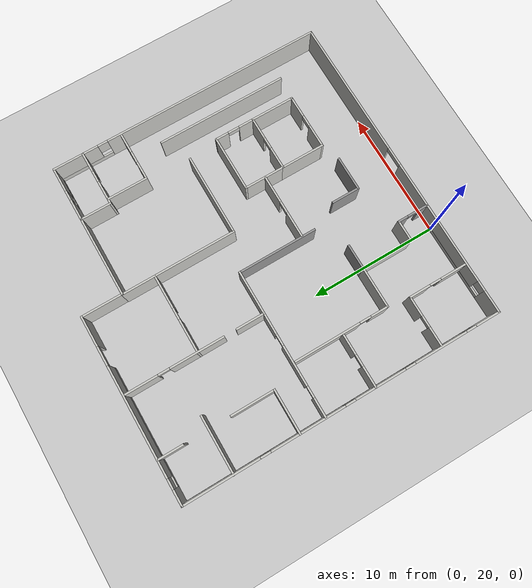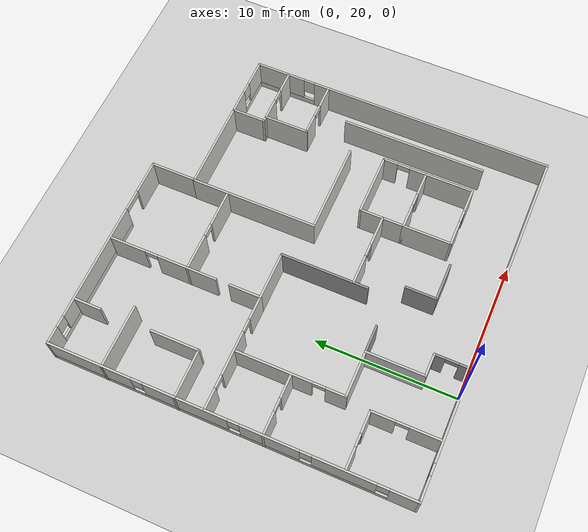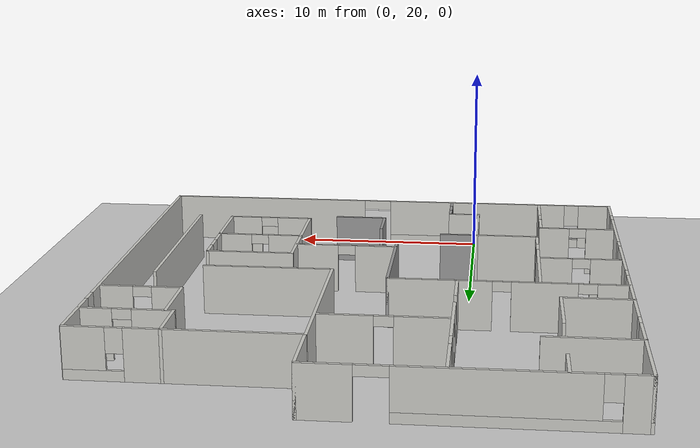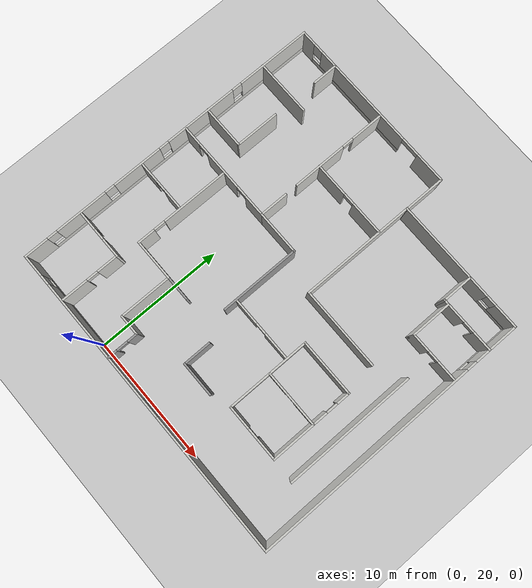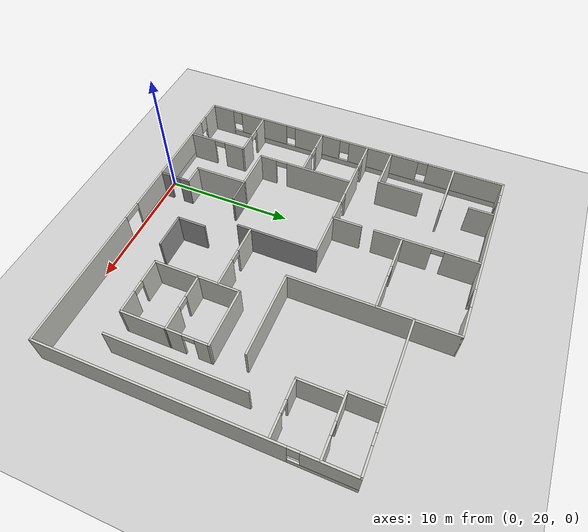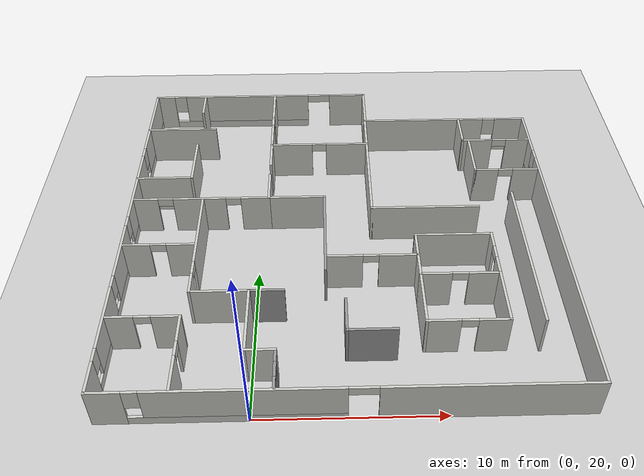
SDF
<sdf version="1.6">
 <world name="default">
  <model name="ground_plane">
   <static>1</static>
   <link name="link">
    <collision name="collision">
     <geometry><plane><normal>0 0 1</normal><size>100 100</size></plane></geometry>
     <surface><friction><ode><mu>100</mu><mu2>50</mu2></ode></friction></surface>
    </collision>
    <visual name="visual">
     <cast_shadows>0</cast_shadows>
     <geometry><plane><normal>0 0 1</normal><size>100 100</size></plane></geometry>
     <material>
      <script><uri>file://media/materials/scripts/gazebo.material</uri><name>Gazebo/Grey</name></script>
     </material>
    </visual>
   </link>
  </model>
  <model name="Multi_25_2">
   <pose>4.82095 32.5177 0 0 -0 0</pose>
   <link name="Wall_0">
    <pose>-5.31645 12.5 0 0 -0 0</pose>
    <visual name="Wall_0_Visual_0">
     <pose>-6.62499 0 1.25 0 -0 0</pose>
     <geometry><box><size>1.25203 0.15 2.5</size></box></geometry>
     <material>
      <script><uri>file://media/materials/scripts/gazebo.material</uri><name>Gazebo/CeilingTiled</name></script>
      <ambient>1 1 1 1</ambient>
     </material>
     <meta><layer>0</layer></meta>
    </visual>
    <collision name="Wall_0_Collision_0">
     <geometry><box><size>1.25203 0.15 2.5</size></box></geometry>
     <pose>-6.62499 0 1.25 0 -0 0</pose>
    </collision>
    <visual name="Wall_0_Visual_1">
     <pose>6.02715 0 1.25 0 -0 0</pose>
     <geometry><box><size>2.44769 0.15 2.5</size></box></geometry>
     <material>
      <script><uri>file://media/materials/scripts/gazebo.material</uri><name>Gazebo/CeilingTiled</name></script>
      <ambient>1 1 1 1</ambient>
     </material>
     <meta><layer>0</layer></meta>
    </visual>
    <collision name="Wall_0_Collision_1">
     <geometry><box><size>2.44769 0.15 2.5</size></box></geometry>
     <pose>6.02715 0 1.25 0 -0 0</pose>
    </collision>
    <visual name="Wall_0_Visual_2">
     <pose>-1.34783 0 0.25 0 -0 0</pose>
     <geometry><box><size>9.30228 0.15 0.5</size></box></geometry>
     <material>
      <script><uri>file://media/materials/scripts/gazebo.material</uri><name>Gazebo/CeilingTiled</name></script>
      <ambient>1 1 1 1</ambient>
     </material>
     <meta><layer>0</layer></meta>
    </visual>
    <collision name="Wall_0_Collision_2">
     <geometry><box><size>9.30228 0.15 0.5</size></box></geometry>
     <pose>-1.34783 0 0.25 0 -0 0</pose>
    </collision>
    <visual name="Wall_0_Visual_3">
     <pose>-0.947833 0 1.5 0 -0 0</pose>
     <geometry><box><size>8.50228 0.15 2</size></box></geometry>
     <material>
      <script><uri>file://media/materials/scripts/gazebo.material</uri><name>Gazebo/CeilingTiled</name></script>
      <ambient>1 1 1 1</ambient>
     </material>
     <meta><layer>0</layer></meta>
    </visual>
    <collision name="Wall_0_Collision_3">
     <geometry><box><size>8.50228 0.15 2</size></box></geometry>
     <pose>-0.947833 0 1.5 0 -0 0</pose>
    </collision>
    <visual name="Wall_0_Visual_4">
     <pose>-5.59897 0 1.9 0 -0 0</pose>
     <geometry><box><size>0.8 0.15 1.2</size></box></geometry>
     <material>
      <script><uri>file://media/materials/scripts/gazebo.material</uri><name>Gazebo/CeilingTiled</name></script>
      <ambient>1 1 1 1</ambient>
     </material>
     <meta><layer>0</layer></meta>
    </visual>
    <collision name="Wall_0_Collision_4">
     <geometry><box><size>0.8 0.15 1.2</size></box></geometry>
     <pose>-5.59897 0 1.9 0 -0 0</pose>
    </collision>
    <visual name="Wall_0_Visual_5">
     <pose>4.05331 0 2.25 0 -0 0</pose>
     <geometry><box><size>1.5 0.15 0.5</size></box></geometry>
     <material>
      <script><uri>file://media/materials/scripts/gazebo.material</uri><name>Gazebo/CeilingTiled</name></script>
      <ambient>1 1 1 1</ambient>
     </material>
     <meta><layer>0</layer></meta>
    </visual>
    <collision name="Wall_0_Collision_5">
     <geometry><box><size>1.5 0.15 0.5</size></box></geometry>
     <pose>4.05331 0 2.25 0 -0 0</pose>
    </collision>
   </link>
   <link name="Wall_11">
    <collision name="Wall_11_Collision">
     <geometry><box><size>3.5 0.15 2.5</size></box></geometry>
     <pose>0 0 1.25 0 -0 0</pose>
    </collision>
    <visual name="Wall_11_Visual">
     <pose>0 0 1.25 0 -0 0</pose>
     <geometry><box><size>3.5 0.15 2.5</size></box></geometry>
     <material>
      <script><uri>file://media/materials/scripts/gazebo.material</uri><name>Gazebo/CeilingTiled</name></script>
      <ambient>1 1 1 1</ambient>
     </material>
     <meta><layer>0</layer></meta>
    </visual>
    <pose>-10.8326 3.5524 0 0 -0 0</pose>
   </link>
   <link name="Wall_12">
    <collision name="Wall_12_Collision">
     <geometry><box><size>3.5 0.15 2.5</size></box></geometry>
     <pose>0 0 1.25 0 -0 0</pose>
    </collision>
    <visual name="Wall_12_Visual">
     <pose>0 0 1.25 0 -0 0</pose>
     <geometry><box><size>3.5 0.15 2.5</size></box></geometry>
     <material>
      <script><uri>file://media/materials/scripts/gazebo.material</uri><name>Gazebo/CeilingTiled</name></script>
      <ambient>1 1 1 1</ambient>
     </material>
     <meta><layer>0</layer></meta>
    </visual>
    <pose>-9.15756 5.22739 0 0 -0 1.5708</pose>
   </link>
   <link name="Wall_14">
    <pose>-4.31815 6.95576 0 0 -0 -1.5708</pose>
    <visual name="Wall_14_Visual_0">
     <pose>-4.1999 0 1.25 0 -0 0</pose>
     <geometry><box><size>2.6002 0.15 2.5</size></box></geometry>
     <material>
      <script><uri>file://media/materials/scripts/gazebo.material</uri><name>Gazebo/CeilingTiled</name></script>
      <ambient>1 1 1 1</ambient>
     </material>
     <meta><layer>0</layer></meta>
    </visual>
    <collision name="Wall_14_Collision_0">
     <geometry><box><size>2.6002 0.15 2.5</size></box></geometry>
     <pose>-4.1999 0 1.25 0 -0 0</pose>
    </collision>
    <visual name="Wall_14_Visual_1">
     <pose>0.145072 0 1.25 0 -0 0</pose>
     <geometry><box><size>4.28974 0.15 2.5</size></box></geometry>
     <material>
      <script><uri>file://media/materials/scripts/gazebo.material</uri><name>Gazebo/CeilingTiled</name></script>
      <ambient>1 1 1 1</ambient>
     </material>
     <meta><layer>0</layer></meta>
    </visual>
    <collision name="Wall_14_Collision_1">
     <geometry><box><size>4.28974 0.15 2.5</size></box></geometry>
     <pose>0.145072 0 1.25 0 -0 0</pose>
    </collision>
    <visual name="Wall_14_Visual_2">
     <pose>4.34497 0 1.25 0 -0 0</pose>
     <geometry><box><size>2.31006 0.15 2.5</size></box></geometry>
     <material>
      <script><uri>file://media/materials/scripts/gazebo.material</uri><name>Gazebo/CeilingTiled</name></script>
      <ambient>1 1 1 1</ambient>
     </material>
     <meta><layer>0</layer></meta>
    </visual>
    <collision name="Wall_14_Collision_2">
     <geometry><box><size>2.31006 0.15 2.5</size></box></geometry>
     <pose>4.34497 0 1.25 0 -0 0</pose>
    </collision>
    <visual name="Wall_14_Visual_3">
     <pose>-2.4498 0 2.25 0 -0 0</pose>
     <geometry><box><size>0.9 0.15 0.5</size></box></geometry>
     <material>
      <script><uri>file://media/materials/scripts/gazebo.material</uri><name>Gazebo/CeilingTiled</name></script>
      <ambient>1 1 1 1</ambient>
     </material>
     <meta><layer>0</layer></meta>
    </visual>
    <collision name="Wall_14_Collision_3">
     <geometry><box><size>0.9 0.15 0.5</size></box></geometry>
     <pose>-2.4498 0 2.25 0 -0 0</pose>
    </collision>
    <visual name="Wall_14_Visual_4">
     <pose>2.28994 0 2.25 0 -0 0</pose>
     <geometry><box><size>0 0.15 0.5</size></box></geometry>
     <material>
      <script><uri>file://media/materials/scripts/gazebo.material</uri><name>Gazebo/CeilingTiled</name></script>
      <ambient>1 1 1 1</ambient>
     </material>
     <meta><layer>0</layer></meta>
    </visual>
    <collision name="Wall_14_Collision_4">
     <geometry><box><size>0 0.15 0.5</size></box></geometry>
     <pose>2.28994 0 2.25 0 -0 0</pose>
    </collision>
   </link>
   <link name="Wall_15">
    <pose>-8.36815 1.53076 0 0 -0 3.14159</pose>
    <visual name="Wall_15_Visual_0">
     <pose>-3.2483 0 1.25 0 -0 0</pose>
     <geometry><box><size>1.75341 0.15 2.5</size></box></geometry>
     <material>
      <script><uri>file://media/materials/scripts/gazebo.material</uri><name>Gazebo/CeilingTiled</name></script>
      <ambient>1 1 1 1</ambient>
     </material>
     <meta><layer>0</layer></meta>
    </visual>
    <collision name="Wall_15_Collision_0">
     <geometry><box><size>1.75341 0.15 2.5</size></box></geometry>
     <pose>-3.2483 0 1.25 0 -0 0</pose>
    </collision>
    <visual name="Wall_15_Visual_1">
     <pose>0.1115 0 1.25 0 -0 0</pose>
     <geometry><box><size>3.16619 0.15 2.5</size></box></geometry>
     <material>
      <script><uri>file://media/materials/scripts/gazebo.material</uri><name>Gazebo/CeilingTiled</name></script>
      <ambient>1 1 1 1</ambient>
     </material>
     <meta><layer>0</layer></meta>
    </visual>
    <collision name="Wall_15_Collision_1">
     <geometry><box><size>3.16619 0.15 2.5</size></box></geometry>
     <pose>0.1115 0 1.25 0 -0 0</pose>
    </collision>
    <visual name="Wall_15_Visual_2">
     <pose>3.3598 0 1.25 0 -0 0</pose>
     <geometry><box><size>1.53041 0.15 2.5</size></box></geometry>
     <material>
      <script><uri>file://media/materials/scripts/gazebo.material</uri><name>Gazebo/CeilingTiled</name></script>
      <ambient>1 1 1 1</ambient>
     </material>
     <meta><layer>0</layer></meta>
    </visual>
    <collision name="Wall_15_Collision_2">
     <geometry><box><size>1.53041 0.15 2.5</size></box></geometry>
     <pose>3.3598 0 1.25 0 -0 0</pose>
    </collision>
    <visual name="Wall_15_Visual_3">
     <pose>-1.92159 0 2.25 0 -0 0</pose>
     <geometry><box><size>0.9 0.15 0.5</size></box></geometry>
     <material>
      <script><uri>file://media/materials/scripts/gazebo.material</uri><name>Gazebo/CeilingTiled</name></script>
      <ambient>1 1 1 1</ambient>
     </material>
     <meta><layer>0</layer></meta>
    </visual>
    <collision name="Wall_15_Collision_3">
     <geometry><box><size>0.9 0.15 0.5</size></box></geometry>
     <pose>-1.92159 0 2.25 0 -0 0</pose>
    </collision>
    <visual name="Wall_15_Visual_4">
     <pose>2.14459 0 2.25 0 -0 0</pose>
     <geometry><box><size>0.9 0.15 0.5</size></box></geometry>
     <material>
      <script><uri>file://media/materials/scripts/gazebo.material</uri><name>Gazebo/CeilingTiled</name></script>
      <ambient>1 1 1 1</ambient>
     </material>
     <meta><layer>0</layer></meta>
    </visual>
    <collision name="Wall_15_Collision_4">
     <geometry><box><size>0.9 0.15 0.5</size></box></geometry>
     <pose>2.14459 0 2.25 0 -0 0</pose>
    </collision>
   </link>
   <link name="Wall_17">
    <pose>10.3118 9.3381 0 0 -0 4.7e-05</pose>
    <visual name="Wall_17_Visual_0">
     <pose>-1.37711 0 1.25 0 -0 0</pose>
     <geometry><box><size>1.74579 0.15 2.5</size></box></geometry>
     <material>
      <script><uri>file://media/materials/scripts/gazebo.material</uri><name>Gazebo/CeilingTiled</name></script>
      <ambient>1 1 1 1</ambient>
     </material>
     <meta><layer>0</layer></meta>
    </visual>
    <collision name="Wall_17_Collision_0">
     <geometry><box><size>1.74579 0.15 2.5</size></box></geometry>
     <pose>-1.37711 0 1.25 0 -0 0</pose>
    </collision>
    <visual name="Wall_17_Visual_1">
     <pose>0.872893 0 0.25 0 -0 0</pose>
     <geometry><box><size>2.75421 0.15 0.5</size></box></geometry>
     <material>
      <script><uri>file://media/materials/scripts/gazebo.material</uri><name>Gazebo/CeilingTiled</name></script>
      <ambient>1 1 1 1</ambient>
     </material>
     <meta><layer>0</layer></meta>
    </visual>
    <collision name="Wall_17_Collision_1">
     <geometry><box><size>2.75421 0.15 0.5</size></box></geometry>
     <pose>0.872893 0 0.25 0 -0 0</pose>
    </collision>
    <visual name="Wall_17_Visual_2">
     <pose>1.27289 0 1.5 0 -0 0</pose>
     <geometry><box><size>1.95421 0.15 2</size></box></geometry>
     <material>
      <script><uri>file://media/materials/scripts/gazebo.material</uri><name>Gazebo/CeilingTiled</name></script>
      <ambient>1 1 1 1</ambient>
     </material>
     <meta><layer>0</layer></meta>
    </visual>
    <collision name="Wall_17_Collision_2">
     <geometry><box><size>1.95421 0.15 2</size></box></geometry>
     <pose>1.27289 0 1.5 0 -0 0</pose>
    </collision>
    <visual name="Wall_17_Visual_3">
     <pose>-0.104214 0 1.9 0 -0 0</pose>
     <geometry><box><size>0.8 0.15 1.2</size></box></geometry>
     <material>
      <script><uri>file://media/materials/scripts/gazebo.material</uri><name>Gazebo/CeilingTiled</name></script>
      <ambient>1 1 1 1</ambient>
     </material>
     <meta><layer>0</layer></meta>
    </visual>
    <collision name="Wall_17_Collision_3">
     <geometry><box><size>0.8 0.15 1.2</size></box></geometry>
     <pose>-0.104214 0 1.9 0 -0 0</pose>
    </collision>
   </link>
   <link name="Wall_19">
    <collision name="Wall_19_Collision">
     <geometry><box><size>2.5 0.15 2.5</size></box></geometry>
     <pose>0 0 1.25 0 -0 0</pose>
    </collision>
    <visual name="Wall_19_Visual">
     <pose>0 0 1.25 0 -0 0</pose>
     <geometry><box><size>2.5 0.15 2.5</size></box></geometry>
     <material>
      <script><uri>file://media/materials/scripts/gazebo.material</uri><name>Gazebo/CeilingTiled</name></script>
      <ambient>1 1 1 1</ambient>
     </material>
     <meta><layer>0</layer></meta>
    </visual>
    <pose>8.13679 8.1631 0 0 -0 -1.57059</pose>
   </link>
   <link name="Wall_2">
    <pose>-12.4924 0 0 0 -0 1.5708</pose>
    <visual name="Wall_2_Visual_0">
     <pose>-11.5919 0 1.25 0 -0 0</pose>
     <geometry><box><size>1.96611 0.15 2.5</size></box></geometry>
     <material>
      <script><uri>file://media/materials/scripts/gazebo.material</uri><name>Gazebo/CeilingTiled</name></script>
      <ambient>1 1 1 1</ambient>
     </material>
     <meta><layer>0</layer></meta>
    </visual>
    <collision name="Wall_2_Collision_0">
     <geometry><box><size>1.96611 0.15 2.5</size></box></geometry>
     <pose>-11.5919 0 1.25 0 -0 0</pose>
    </collision>
    <visual name="Wall_2_Visual_1">
     <pose>0.983056 0 0.25 0 -0 0</pose>
     <geometry><box><size>23.1839 0.15 0.5</size></box></geometry>
     <material>
      <script><uri>file://media/materials/scripts/gazebo.material</uri><name>Gazebo/CeilingTiled</name></script>
      <ambient>1 1 1 1</ambient>
     </material>
     <meta><layer>0</layer></meta>
    </visual>
    <collision name="Wall_2_Collision_1">
     <geometry><box><size>23.1839 0.15 0.5</size></box></geometry>
     <pose>0.983056 0 0.25 0 -0 0</pose>
    </collision>
    <visual name="Wall_2_Visual_2">
     <pose>-7.71253 0 1.5 0 -0 0</pose>
     <geometry><box><size>4.19271 0.15 2</size></box></geometry>
     <material>
      <script><uri>file://media/materials/scripts/gazebo.material</uri><name>Gazebo/CeilingTiled</name></script>
      <ambient>1 1 1 1</ambient>
     </material>
     <meta><layer>0</layer></meta>
    </visual>
    <collision name="Wall_2_Collision_2">
     <geometry><box><size>4.19271 0.15 2</size></box></geometry>
     <pose>-7.71253 0 1.5 0 -0 0</pose>
    </collision>
    <visual name="Wall_2_Visual_3">
     <pose>-2.81454 0 1.5 0 -0 0</pose>
     <geometry><box><size>4.00328 0.15 2</size></box></geometry>
     <material>
      <script><uri>file://media/materials/scripts/gazebo.material</uri><name>Gazebo/CeilingTiled</name></script>
      <ambient>1 1 1 1</ambient>
     </material>
     <meta><layer>0</layer></meta>
    </visual>
    <collision name="Wall_2_Collision_3">
     <geometry><box><size>4.00328 0.15 2</size></box></geometry>
     <pose>-2.81454 0 1.5 0 -0 0</pose>
    </collision>
    <visual name="Wall_2_Visual_4">
     <pose>2.89141 0 1.5 0 -0 0</pose>
     <geometry><box><size>5.80863 0.15 2</size></box></geometry>
     <material>
      <script><uri>file://media/materials/scripts/gazebo.material</uri><name>Gazebo/CeilingTiled</name></script>
      <ambient>1 1 1 1</ambient>
     </material>
     <meta><layer>0</layer></meta>
    </visual>
    <collision name="Wall_2_Collision_4">
     <geometry><box><size>5.80863 0.15 2</size></box></geometry>
     <pose>2.89141 0 1.5 0 -0 0</pose>
    </collision>
    <visual name="Wall_2_Visual_5">
     <pose>9.58536 0 1.5 0 -0 0</pose>
     <geometry><box><size>5.97928 0.15 2</size></box></geometry>
     <material>
      <script><uri>file://media/materials/scripts/gazebo.material</uri><name>Gazebo/CeilingTiled</name></script>
      <ambient>1 1 1 1</ambient>
     </material>
     <meta><layer>0</layer></meta>
    </visual>
    <collision name="Wall_2_Collision_5">
     <geometry><box><size>5.97928 0.15 2</size></box></geometry>
     <pose>9.58536 0 1.5 0 -0 0</pose>
    </collision>
    <visual name="Wall_2_Visual_6">
     <pose>-10.2089 0 1.9 0 -0 0</pose>
     <geometry><box><size>0.8 0.15 1.2</size></box></geometry>
     <material>
      <script><uri>file://media/materials/scripts/gazebo.material</uri><name>Gazebo/CeilingTiled</name></script>
      <ambient>1 1 1 1</ambient>
     </material>
     <meta><layer>0</layer></meta>
    </visual>
    <collision name="Wall_2_Collision_6">
     <geometry><box><size>0.8 0.15 1.2</size></box></geometry>
     <pose>-10.2089 0 1.9 0 -0 0</pose>
    </collision>
    <visual name="Wall_2_Visual_7">
     <pose>-5.21618 0 1.9 0 -0 0</pose>
     <geometry><box><size>0.8 0.15 1.2</size></box></geometry>
     <material>
      <script><uri>file://media/materials/scripts/gazebo.material</uri><name>Gazebo/CeilingTiled</name></script>
      <ambient>1 1 1 1</ambient>
     </material>
     <meta><layer>0</layer></meta>
    </visual>
    <collision name="Wall_2_Collision_7">
     <geometry><box><size>0.8 0.15 1.2</size></box></geometry>
     <pose>-5.21618 0 1.9 0 -0 0</pose>
    </collision>
    <visual name="Wall_2_Visual_8">
     <pose>-0.412904 0 1.9 0 -0 0</pose>
     <geometry><box><size>0.8 0.15 1.2</size></box></geometry>
     <material>
      <script><uri>file://media/materials/scripts/gazebo.material</uri><name>Gazebo/CeilingTiled</name></script>
      <ambient>1 1 1 1</ambient>
     </material>
     <meta><layer>0</layer></meta>
    </visual>
    <collision name="Wall_2_Collision_8">
     <geometry><box><size>0.8 0.15 1.2</size></box></geometry>
     <pose>-0.412904 0 1.9 0 -0 0</pose>
    </collision>
    <visual name="Wall_2_Visual_9">
     <pose>6.19572 0 1.9 0 -0 0</pose>
     <geometry><box><size>0.8 0.15 1.2</size></box></geometry>
     <material>
      <script><uri>file://media/materials/scripts/gazebo.material</uri><name>Gazebo/CeilingTiled</name></script>
      <ambient>1 1 1 1</ambient>
     </material>
     <meta><layer>0</layer></meta>
    </visual>
    <collision name="Wall_2_Collision_9">
     <geometry><box><size>0.8 0.15 1.2</size></box></geometry>
     <pose>6.19572 0 1.9 0 -0 0</pose>
    </collision>
   </link>
   <link name="Wall_20">
    <pose>10.312 6.98821 0 0 -0 0</pose>
    <visual name="Wall_20_Visual_0">
     <pose>-1.24915 0 1.25 0 -0 0</pose>
     <geometry><box><size>2.0017 0.15 2.5</size></box></geometry>
     <material>
      <script><uri>file://media/materials/scripts/gazebo.material</uri><name>Gazebo/CeilingTiled</name></script>
      <ambient>1 1 1 1</ambient>
     </material>
     <meta><layer>0</layer></meta>
    </visual>
    <collision name="Wall_20_Collision_0">
     <geometry><box><size>2.0017 0.15 2.5</size></box></geometry>
     <pose>-1.24915 0 1.25 0 -0 0</pose>
    </collision>
    <visual name="Wall_20_Visual_1">
     <pose>1.45085 0 1.25 0 -0 0</pose>
     <geometry><box><size>1.5983 0.15 2.5</size></box></geometry>
     <material>
      <script><uri>file://media/materials/scripts/gazebo.material</uri><name>Gazebo/CeilingTiled</name></script>
      <ambient>1 1 1 1</ambient>
     </material>
     <meta><layer>0</layer></meta>
    </visual>
    <collision name="Wall_20_Collision_1">
     <geometry><box><size>1.5983 0.15 2.5</size></box></geometry>
     <pose>1.45085 0 1.25 0 -0 0</pose>
    </collision>
    <visual name="Wall_20_Visual_2">
     <pose>0.201704 0 2.25 0 -0 0</pose>
     <geometry><box><size>0.9 0.15 0.5</size></box></geometry>
     <material>
      <script><uri>file://media/materials/scripts/gazebo.material</uri><name>Gazebo/CeilingTiled</name></script>
      <ambient>1 1 1 1</ambient>
     </material>
     <meta><layer>0</layer></meta>
    </visual>
    <collision name="Wall_20_Collision_2">
     <geometry><box><size>0.9 0.15 0.5</size></box></geometry>
     <pose>0.201704 0 2.25 0 -0 0</pose>
    </collision>
   </link>
   <link name="Wall_22">
    <collision name="Wall_22_Collision">
     <geometry><box><size>3.25 0.15 2.5</size></box></geometry>
     <pose>0 0 1.25 0 -0 0</pose>
    </collision>
    <visual name="Wall_22_Visual">
     <pose>0 0 1.25 0 -0 0</pose>
     <geometry><box><size>3.25 0.15 2.5</size></box></geometry>
     <material>
      <script><uri>file://media/materials/scripts/gazebo.material</uri><name>Gazebo/CeilingTiled</name></script>
      <ambient>1 1 1 1</ambient>
     </material>
     <meta><layer>0</layer></meta>
    </visual>
    <pose>8.51117 5.42212 0 0 -0 -1.5708</pose>
   </link>
   <link name="Wall_23">
    <pose>10.4362 3.87212 0 0 -0 0</pose>
    <visual name="Wall_23_Visual_0">
     <pose>-1.23972 0 1.25 0 -0 0</pose>
     <geometry><box><size>1.52056 0.15 2.5</size></box></geometry>
     <material>
      <script><uri>file://media/materials/scripts/gazebo.material</uri><name>Gazebo/CeilingTiled</name></script>
      <ambient>1 1 1 1</ambient>
     </material>
     <meta><layer>0</layer></meta>
    </visual>
    <collision name="Wall_23_Collision_0">
     <geometry><box><size>1.52056 0.15 2.5</size></box></geometry>
     <pose>-1.23972 0 1.25 0 -0 0</pose>
    </collision>
    <visual name="Wall_23_Visual_1">
     <pose>1.21028 0 1.25 0 -0 0</pose>
     <geometry><box><size>1.57944 0.15 2.5</size></box></geometry>
     <material>
      <script><uri>file://media/materials/scripts/gazebo.material</uri><name>Gazebo/CeilingTiled</name></script>
      <ambient>1 1 1 1</ambient>
     </material>
     <meta><layer>0</layer></meta>
    </visual>
    <collision name="Wall_23_Collision_1">
     <geometry><box><size>1.57944 0.15 2.5</size></box></geometry>
     <pose>1.21028 0 1.25 0 -0 0</pose>
    </collision>
    <visual name="Wall_23_Visual_2">
     <pose>-0.02944 0 2.25 0 -0 0</pose>
     <geometry><box><size>0.9 0.15 0.5</size></box></geometry>
     <material>
      <script><uri>file://media/materials/scripts/gazebo.material</uri><name>Gazebo/CeilingTiled</name></script>
      <ambient>1 1 1 1</ambient>
     </material>
     <meta><layer>0</layer></meta>
    </visual>
    <collision name="Wall_23_Collision_2">
     <geometry><box><size>0.9 0.15 0.5</size></box></geometry>
     <pose>-0.02944 0 2.25 0 -0 0</pose>
    </collision>
   </link>
   <link name="Wall_25">
    <collision name="Wall_25_Collision">
     <geometry><box><size>9.062 0.15 2.5</size></box></geometry>
     <pose>0 0 1.25 0 -0 0</pose>
    </collision>
    <visual name="Wall_25_Visual">
     <pose>0 0 1.25 0 -0 0</pose>
     <geometry><box><size>9.062 0.15 2.5</size></box></geometry>
     <material>
      <script><uri>file://media/materials/scripts/gazebo.material</uri><name>Gazebo/CeilingTiled</name></script>
      <ambient>1 1 1 1</ambient>
     </material>
     <meta><layer>0</layer></meta>
    </visual>
    <pose>1.83255 4.882 0 0 -0 -1.5708</pose>
   </link>
   <link name="Wall_26">
    <collision name="Wall_26_Collision">
     <geometry><box><size>6.5 0.15 2.5</size></box></geometry>
     <pose>0 0 1.25 0 -0 0</pose>
    </collision>
    <visual name="Wall_26_Visual">
     <pose>0 0 1.25 0 -0 0</pose>
     <geometry><box><size>6.5 0.15 2.5</size></box></geometry>
     <material>
      <script><uri>file://media/materials/scripts/gazebo.material</uri><name>Gazebo/CeilingTiled</name></script>
      <ambient>1 1 1 1</ambient>
     </material>
     <meta><layer>0</layer></meta>
    </visual>
    <pose>5.00767 0.425999 0 0 -0 0</pose>
   </link>
   <link name="Wall_28">
    <pose>-8.26445 -2.3535 0 0 -0 -1.5708</pose>
    <visual name="Wall_28_Visual_0">
     <pose>-1.1653 0 1.25 0 -0 0</pose>
     <geometry><box><size>5.25855 0.15 2.5</size></box></geometry>
     <material>
      <script><uri>file://media/materials/scripts/gazebo.material</uri><name>Gazebo/CeilingTiled</name></script>
      <ambient>1 1 1 1</ambient>
     </material>
     <meta><layer>0</layer></meta>
    </visual>
    <collision name="Wall_28_Collision_0">
     <geometry><box><size>5.25855 0.15 2.5</size></box></geometry>
     <pose>-1.1653 0 1.25 0 -0 0</pose>
    </collision>
    <visual name="Wall_28_Visual_1">
     <pose>3.07927 0 1.25 0 -0 0</pose>
     <geometry><box><size>1.43059 0.15 2.5</size></box></geometry>
     <material>
      <script><uri>file://media/materials/scripts/gazebo.material</uri><name>Gazebo/CeilingTiled</name></script>
      <ambient>1 1 1 1</ambient>
     </material>
     <meta><layer>0</layer></meta>
    </visual>
    <collision name="Wall_28_Collision_1">
     <geometry><box><size>1.43059 0.15 2.5</size></box></geometry>
     <pose>3.07927 0 1.25 0 -0 0</pose>
    </collision>
    <visual name="Wall_28_Visual_2">
     <pose>1.91398 0 2.25 0 -0 0</pose>
     <geometry><box><size>0.9 0.15 0.5</size></box></geometry>
     <material>
      <script><uri>file://media/materials/scripts/gazebo.material</uri><name>Gazebo/CeilingTiled</name></script>
      <ambient>1 1 1 1</ambient>
     </material>
     <meta><layer>0</layer></meta>
    </visual>
    <collision name="Wall_28_Collision_2">
     <geometry><box><size>0.9 0.15 0.5</size></box></geometry>
     <pose>1.91398 0 2.25 0 -0 0</pose>
    </collision>
   </link>
   <link name="Wall_29">
    <collision name="Wall_29_Collision">
     <geometry><box><size>3.337 0.15 2.5</size></box></geometry>
     <pose>0 0 1.25 0 -0 0</pose>
    </collision>
    <visual name="Wall_29_Visual">
     <pose>0 0 1.25 0 -0 0</pose>
     <geometry><box><size>3.337 0.15 2.5</size></box></geometry>
     <material>
      <script><uri>file://media/materials/scripts/gazebo.material</uri><name>Gazebo/CeilingTiled</name></script>
      <ambient>1 1 1 1</ambient>
     </material>
     <meta><layer>0</layer></meta>
    </visual>
    <pose>-6.67095 -6.073 0 0 -0 0</pose>
   </link>
   <link name="Wall_30">
    <collision name="Wall_30_Collision">
     <geometry><box><size>4.16159 0.15 2.5</size></box></geometry>
     <pose>0 0 1.25 0 -0 0</pose>
    </collision>
    <visual name="Wall_30_Visual">
     <pose>0 0 1.25 0 -0 0</pose>
     <geometry><box><size>4.16159 0.15 2.5</size></box></geometry>
     <material>
      <script><uri>file://media/materials/scripts/gazebo.material</uri><name>Gazebo/CeilingTiled</name></script>
      <ambient>1 1 1 1</ambient>
     </material>
     <meta><layer>0</layer></meta>
    </visual>
    <pose>-5.07745 -8.0785 0 0 -0 -1.5708</pose>
   </link>
   <link name="Wall_31">
    <collision name="Wall_31_Collision">
     <geometry><box><size>1.70371 0.15 2.5</size></box></geometry>
     <pose>0 0 1.25 0 -0 0</pose>
    </collision>
    <visual name="Wall_31_Visual">
     <pose>0 0 1.25 0 -0 0</pose>
     <geometry><box><size>1.70371 0.15 2.5</size></box></geometry>
     <material>
      <script><uri>file://media/materials/scripts/gazebo.material</uri><name>Gazebo/CeilingTiled</name></script>
      <ambient>1 1 1 1</ambient>
     </material>
     <meta><layer>0</layer></meta>
    </visual>
    <pose>-4.30059 -10.0841 0 0 -0 -0.000181</pose>
   </link>
   <link name="Wall_32">
    <pose>-3.52373 -11.2593 0 0 -0 -1.5708</pose>
    <visual name="Wall_32_Visual_0">
     <pose>-0.829686 0 1.25 0 -0 0</pose>
     <geometry><box><size>0.840627 0.15 2.5</size></box></geometry>
     <material>
      <script><uri>file://media/materials/scripts/gazebo.material</uri><name>Gazebo/Grey</name></script>
      <ambient>1 1 1 1</ambient>
     </material>
     <meta><layer>0</layer></meta>
    </visual>
    <collision name="Wall_32_Collision_0">
     <geometry><box><size>0.840627 0.15 2.5</size></box></geometry>
     <pose>-0.829686 0 1.25 0 -0 0</pose>
    </collision>
    <visual name="Wall_32_Visual_1">
     <pose>0.870314 0 1.25 0 -0 0</pose>
     <geometry><box><size>0.759373 0.15 2.5</size></box></geometry>
     <material>
      <script><uri>file://media/materials/scripts/gazebo.material</uri><name>Gazebo/Grey</name></script>
      <ambient>1 1 1 1</ambient>
     </material>
     <meta><layer>0</layer></meta>
    </visual>
    <collision name="Wall_32_Collision_1">
     <geometry><box><size>0.759373 0.15 2.5</size></box></geometry>
     <pose>0.870314 0 1.25 0 -0 0</pose>
    </collision>
    <visual name="Wall_32_Visual_2">
     <pose>0.040627 0 2.25 0 -0 0</pose>
     <geometry><box><size>0.9 0.15 0.5</size></box></geometry>
     <material>
      <script><uri>file://media/materials/scripts/gazebo.material</uri><name>Gazebo/Grey</name></script>
      <ambient>1 1 1 1</ambient>
     </material>
     <meta><layer>0</layer></meta>
    </visual>
    <collision name="Wall_32_Collision_2">
     <geometry><box><size>0.9 0.15 0.5</size></box></geometry>
     <pose>0.040627 0 2.25 0 -0 0</pose>
    </collision>
   </link>
   <link name="Wall_34">
    <collision name="Wall_34_Collision">
     <geometry><box><size>3.5 0.15 2.5</size></box></geometry>
     <pose>0 0 1.25 0 -0 0</pose>
    </collision>
    <visual name="Wall_34_Visual">
     <pose>0 0 1.25 0 -0 0</pose>
     <geometry><box><size>3.5 0.15 2.5</size></box></geometry>
     <material>
      <script><uri>file://media/materials/scripts/gazebo.material</uri><name>Gazebo/CeilingTiled</name></script>
      <ambient>1 1 1 1</ambient>
     </material>
     <meta><layer>0</layer></meta>
    </visual>
    <pose>-2.64316 1.53076 0 0 -0 0</pose>
   </link>
   <link name="Wall_38">
    <collision name="Wall_38_Collision">
     <geometry><box><size>3.25 0.15 2.5</size></box></geometry>
     <pose>0 0 1.25 0 -0 0</pose>
    </collision>
    <visual name="Wall_38_Visual">
     <pose>0 0 1.25 0 -0 0</pose>
     <geometry><box><size>3.25 0.15 2.5</size></box></geometry>
     <material>
      <script><uri>file://media/materials/scripts/gazebo.material</uri><name>Gazebo/CeilingTiled</name></script>
      <ambient>1 1 1 1</ambient>
     </material>
     <meta><layer>0</layer></meta>
    </visual>
    <pose>4.20689 -3.51892 0 0 -0 -1.5708</pose>
   </link>
   <link name="Wall_39">
    <pose>6.38189 -5.06892 0 0 -0 0</pose>
    <visual name="Wall_39_Visual_0">
     <pose>-1.34392 0 1.25 0 -0 0</pose>
     <geometry><box><size>1.81215 0.15 2.5</size></box></geometry>
     <material>
      <script><uri>file://media/materials/scripts/gazebo.material</uri><name>Gazebo/CeilingTiled</name></script>
      <ambient>1 1 1 1</ambient>
     </material>
     <meta><layer>0</layer></meta>
    </visual>
    <collision name="Wall_39_Collision_0">
     <geometry><box><size>1.81215 0.15 2.5</size></box></geometry>
     <pose>-1.34392 0 1.25 0 -0 0</pose>
    </collision>
    <visual name="Wall_39_Visual_1">
     <pose>1.35608 0 1.25 0 -0 0</pose>
     <geometry><box><size>1.78785 0.15 2.5</size></box></geometry>
     <material>
      <script><uri>file://media/materials/scripts/gazebo.material</uri><name>Gazebo/CeilingTiled</name></script>
      <ambient>1 1 1 1</ambient>
     </material>
     <meta><layer>0</layer></meta>
    </visual>
    <collision name="Wall_39_Collision_1">
     <geometry><box><size>1.78785 0.15 2.5</size></box></geometry>
     <pose>1.35608 0 1.25 0 -0 0</pose>
    </collision>
    <visual name="Wall_39_Visual_2">
     <pose>0.012152 0 2.25 0 -0 0</pose>
     <geometry><box><size>0.9 0.15 0.5</size></box></geometry>
     <material>
      <script><uri>file://media/materials/scripts/gazebo.material</uri><name>Gazebo/CeilingTiled</name></script>
      <ambient>1 1 1 1</ambient>
     </material>
     <meta><layer>0</layer></meta>
    </visual>
    <collision name="Wall_39_Collision_2">
     <geometry><box><size>0.9 0.15 0.5</size></box></geometry>
     <pose>0.012152 0 2.25 0 -0 0</pose>
    </collision>
   </link>
   <link name="Wall_4">
    <pose>0.007554 -12.5 0 0 -0 0</pose>
    <visual name="Wall_4_Visual_0">
     <pose>-11.6747 0 1.25 0 -0 0</pose>
     <geometry><box><size>1.80068 0.15 2.5</size></box></geometry>
     <material>
      <script><uri>file://media/materials/scripts/gazebo.material</uri><name>Gazebo/CeilingTiled</name></script>
      <ambient>1 1 1 1</ambient>
     </material>
     <meta><layer>0</layer></meta>
    </visual>
    <collision name="Wall_4_Collision_0">
     <geometry><box><size>1.80068 0.15 2.5</size></box></geometry>
     <pose>-11.6747 0 1.25 0 -0 0</pose>
    </collision>
    <visual name="Wall_4_Visual_1">
     <pose>7.05794 0 1.25 0 -0 0</pose>
     <geometry><box><size>11.0341 0.15 2.5</size></box></geometry>
     <material>
      <script><uri>file://media/materials/scripts/gazebo.material</uri><name>Gazebo/CeilingTiled</name></script>
      <ambient>1 1 1 1</ambient>
     </material>
     <meta><layer>0</layer></meta>
    </visual>
    <collision name="Wall_4_Collision_1">
     <geometry><box><size>11.0341 0.15 2.5</size></box></geometry>
     <pose>7.05794 0 1.25 0 -0 0</pose>
    </collision>
    <visual name="Wall_4_Visual_2">
     <pose>-5.36672 0 0.25 0 -0 0</pose>
     <geometry><box><size>10.8152 0.15 0.5</size></box></geometry>
     <material>
      <script><uri>file://media/materials/scripts/gazebo.material</uri><name>Gazebo/CeilingTiled</name></script>
      <ambient>1 1 1 1</ambient>
     </material>
     <meta><layer>0</layer></meta>
    </visual>
    <collision name="Wall_4_Collision_2">
     <geometry><box><size>10.8152 0.15 0.5</size></box></geometry>
     <pose>-5.36672 0 0.25 0 -0 0</pose>
    </collision>
    <visual name="Wall_4_Visual_3">
     <pose>-4.96672 0 1.5 0 -0 0</pose>
     <geometry><box><size>10.0152 0.15 2</size></box></geometry>
     <material>
      <script><uri>file://media/materials/scripts/gazebo.material</uri><name>Gazebo/CeilingTiled</name></script>
      <ambient>1 1 1 1</ambient>
     </material>
     <meta><layer>0</layer></meta>
    </visual>
    <collision name="Wall_4_Collision_3">
     <geometry><box><size>10.0152 0.15 2</size></box></geometry>
     <pose>-4.96672 0 1.5 0 -0 0</pose>
    </collision>
    <visual name="Wall_4_Visual_4">
     <pose>-10.3743 0 1.9 0 -0 0</pose>
     <geometry><box><size>0.8 0.15 1.2</size></box></geometry>
     <material>
      <script><uri>file://media/materials/scripts/gazebo.material</uri><name>Gazebo/CeilingTiled</name></script>
      <ambient>1 1 1 1</ambient>
     </material>
     <meta><layer>0</layer></meta>
    </visual>
    <collision name="Wall_4_Collision_4">
     <geometry><box><size>0.8 0.15 1.2</size></box></geometry>
     <pose>-10.3743 0 1.9 0 -0 0</pose>
    </collision>
    <visual name="Wall_4_Visual_5">
     <pose>0.790887 0 2.25 0 -0 0</pose>
     <geometry><box><size>1.5 0.15 0.5</size></box></geometry>
     <material>
      <script><uri>file://media/materials/scripts/gazebo.material</uri><name>Gazebo/CeilingTiled</name></script>
      <ambient>1 1 1 1</ambient>
     </material>
     <meta><layer>0</layer></meta>
    </visual>
    <collision name="Wall_4_Collision_5">
     <geometry><box><size>1.5 0.15 0.5</size></box></geometry>
     <pose>0.790887 0 2.25 0 -0 0</pose>
    </collision>
   </link>
   <link name="Wall_40">
    <pose>8.55689 -3.51892 0 0 -0 1.5708</pose>
    <visual name="Wall_40_Visual_0">
     <pose>-0.995561 0 1.25 0 -0 0</pose>
     <geometry><box><size>1.25888 0.15 2.5</size></box></geometry>
     <material>
      <script><uri>file://media/materials/scripts/gazebo.material</uri><name>Gazebo/CeilingTiled</name></script>
      <ambient>1 1 1 1</ambient>
     </material>
     <meta><layer>0</layer></meta>
    </visual>
    <collision name="Wall_40_Collision_0">
     <geometry><box><size>1.25888 0.15 2.5</size></box></geometry>
     <pose>-0.995561 0 1.25 0 -0 0</pose>
    </collision>
    <visual name="Wall_40_Visual_1">
     <pose>1.07944 0 1.25 0 -0 0</pose>
     <geometry><box><size>1.09112 0.15 2.5</size></box></geometry>
     <material>
      <script><uri>file://media/materials/scripts/gazebo.material</uri><name>Gazebo/CeilingTiled</name></script>
      <ambient>1 1 1 1</ambient>
     </material>
     <meta><layer>0</layer></meta>
    </visual>
    <collision name="Wall_40_Collision_1">
     <geometry><box><size>1.09112 0.15 2.5</size></box></geometry>
     <pose>1.07944 0 1.25 0 -0 0</pose>
    </collision>
    <visual name="Wall_40_Visual_2">
     <pose>0.083878 0 2.25 0 -0 0</pose>
     <geometry><box><size>0.9 0.15 0.5</size></box></geometry>
     <material>
      <script><uri>file://media/materials/scripts/gazebo.material</uri><name>Gazebo/CeilingTiled</name></script>
      <ambient>1 1 1 1</ambient>
     </material>
     <meta><layer>0</layer></meta>
    </visual>
    <collision name="Wall_40_Collision_2">
     <geometry><box><size>0.9 0.15 0.5</size></box></geometry>
     <pose>0.083878 0 2.25 0 -0 0</pose>
    </collision>
   </link>
   <link name="Wall_41">
    <collision name="Wall_41_Collision">
     <geometry><box><size>4.5 0.15 2.5</size></box></geometry>
     <pose>0 0 1.25 0 -0 0</pose>
    </collision>
    <visual name="Wall_41_Visual">
     <pose>0 0 1.25 0 -0 0</pose>
     <geometry><box><size>4.5 0.15 2.5</size></box></geometry>
     <material>
      <script><uri>file://media/materials/scripts/gazebo.material</uri><name>Gazebo/CeilingTiled</name></script>
      <ambient>1 1 1 1</ambient>
     </material>
     <meta><layer>0</layer></meta>
    </visual>
    <pose>6.38189 -1.96892 0 0 -0 3.14159</pose>
   </link>
   <link name="Wall_43">
    <collision name="Wall_43_Collision">
     <geometry><box><size>3.5 0.15 2.5</size></box></geometry>
     <pose>0 0 1.25 0 -0 0</pose>
    </collision>
    <visual name="Wall_43_Visual">
     <pose>0 0 1.25 0 -0 0</pose>
     <geometry><box><size>3.5 0.15 2.5</size></box></geometry>
     <material>
      <script><uri>file://media/materials/scripts/gazebo.material</uri><name>Gazebo/CeilingTiled</name></script>
      <ambient>1 1 1 1</ambient>
     </material>
     <meta><layer>0</layer></meta>
    </visual>
    <pose>8.55689 -6.74392 0 0 -0 -1.5708</pose>
   </link>
   <link name="Wall_44">
    <pose>6.38189 -8.41892 0 0 -0 3.14159</pose>
    <visual name="Wall_44_Visual_0">
     <pose>-1.38283 0 1.25 0 -0 0</pose>
     <geometry><box><size>1.73435 0.15 2.5</size></box></geometry>
     <material>
      <script><uri>file://media/materials/scripts/gazebo.material</uri><name>Gazebo/CeilingTiled</name></script>
      <ambient>1 1 1 1</ambient>
     </material>
     <meta><layer>0</layer></meta>
    </visual>
    <collision name="Wall_44_Collision_0">
     <geometry><box><size>1.73435 0.15 2.5</size></box></geometry>
     <pose>-1.38283 0 1.25 0 -0 0</pose>
    </collision>
    <visual name="Wall_44_Visual_1">
     <pose>1.31717 0 1.25 0 -0 0</pose>
     <geometry><box><size>1.86565 0.15 2.5</size></box></geometry>
     <material>
      <script><uri>file://media/materials/scripts/gazebo.material</uri><name>Gazebo/CeilingTiled</name></script>
      <ambient>1 1 1 1</ambient>
     </material>
     <meta><layer>0</layer></meta>
    </visual>
    <collision name="Wall_44_Collision_1">
     <geometry><box><size>1.86565 0.15 2.5</size></box></geometry>
     <pose>1.31717 0 1.25 0 -0 0</pose>
    </collision>
    <visual name="Wall_44_Visual_2">
     <pose>-0.065654 0 2.25 0 -0 0</pose>
     <geometry><box><size>0.9 0.15 0.5</size></box></geometry>
     <material>
      <script><uri>file://media/materials/scripts/gazebo.material</uri><name>Gazebo/CeilingTiled</name></script>
      <ambient>1 1 1 1</ambient>
     </material>
     <meta><layer>0</layer></meta>
    </visual>
    <collision name="Wall_44_Collision_2">
     <geometry><box><size>0.9 0.15 0.5</size></box></geometry>
     <pose>-0.065654 0 2.25 0 -0 0</pose>
    </collision>
   </link>
   <link name="Wall_45">
    <collision name="Wall_45_Collision">
     <geometry><box><size>3.5 0.15 2.5</size></box></geometry>
     <pose>0 0 1.25 0 -0 0</pose>
    </collision>
    <visual name="Wall_45_Visual">
     <pose>0 0 1.25 0 -0 0</pose>
     <geometry><box><size>3.5 0.15 2.5</size></box></geometry>
     <material>
      <script><uri>file://media/materials/scripts/gazebo.material</uri><name>Gazebo/CeilingTiled</name></script>
      <ambient>1 1 1 1</ambient>
     </material>
     <meta><layer>0</layer></meta>
    </visual>
    <pose>4.20689 -6.74392 0 0 -0 1.5708</pose>
   </link>
   <link name="Wall_47">
    <pose>-1.27389 6.7806 0 0 -0 0</pose>
    <visual name="Wall_47_Visual_0">
     <pose>-1.77896 0 1.25 0 -0 0</pose>
     <geometry><box><size>2.69207 0.15 2.5</size></box></geometry>
     <material>
      <script><uri>file://media/materials/scripts/gazebo.material</uri><name>Gazebo/CeilingTiled</name></script>
      <ambient>1 1 1 1</ambient>
     </material>
     <meta><layer>0</layer></meta>
    </visual>
    <collision name="Wall_47_Collision_0">
     <geometry><box><size>2.69207 0.15 2.5</size></box></geometry>
     <pose>-1.77896 0 1.25 0 -0 0</pose>
    </collision>
    <visual name="Wall_47_Visual_1">
     <pose>1.79604 0 1.25 0 -0 0</pose>
     <geometry><box><size>2.65793 0.15 2.5</size></box></geometry>
     <material>
      <script><uri>file://media/materials/scripts/gazebo.material</uri><name>Gazebo/CeilingTiled</name></script>
      <ambient>1 1 1 1</ambient>
     </material>
     <meta><layer>0</layer></meta>
    </visual>
    <collision name="Wall_47_Collision_1">
     <geometry><box><size>2.65793 0.15 2.5</size></box></geometry>
     <pose>1.79604 0 1.25 0 -0 0</pose>
    </collision>
    <visual name="Wall_47_Visual_2">
     <pose>0.017072 0 2.25 0 -0 0</pose>
     <geometry><box><size>0.9 0.15 0.5</size></box></geometry>
     <material>
      <script><uri>file://media/materials/scripts/gazebo.material</uri><name>Gazebo/CeilingTiled</name></script>
      <ambient>1 1 1 1</ambient>
     </material>
     <meta><layer>0</layer></meta>
    </visual>
    <collision name="Wall_47_Collision_2">
     <geometry><box><size>0.9 0.15 0.5</size></box></geometry>
     <pose>0.017072 0 2.25 0 -0 0</pose>
    </collision>
   </link>
   <link name="Wall_49">
    <pose>-10.4365 -7.77796 0 0 -0 0</pose>
    <visual name="Wall_49_Visual_0">
     <pose>-1.24841 0 1.25 0 -0 0</pose>
     <geometry><box><size>1.50318 0.15 2.5</size></box></geometry>
     <material>
      <script><uri>file://media/materials/scripts/gazebo.material</uri><name>Gazebo/CeilingTiled</name></script>
      <ambient>1 1 1 1</ambient>
     </material>
     <meta><layer>0</layer></meta>
    </visual>
    <collision name="Wall_49_Collision_0">
     <geometry><box><size>1.50318 0.15 2.5</size></box></geometry>
     <pose>-1.24841 0 1.25 0 -0 0</pose>
    </collision>
    <visual name="Wall_49_Visual_1">
     <pose>1.20159 0 1.25 0 -0 0</pose>
     <geometry><box><size>1.59682 0.15 2.5</size></box></geometry>
     <material>
      <script><uri>file://media/materials/scripts/gazebo.material</uri><name>Gazebo/CeilingTiled</name></script>
      <ambient>1 1 1 1</ambient>
     </material>
     <meta><layer>0</layer></meta>
    </visual>
    <collision name="Wall_49_Collision_1">
     <geometry><box><size>1.59682 0.15 2.5</size></box></geometry>
     <pose>1.20159 0 1.25 0 -0 0</pose>
    </collision>
    <visual name="Wall_49_Visual_2">
     <pose>-0.046815 0 2.25 0 -0 0</pose>
     <geometry><box><size>0.9 0.15 0.5</size></box></geometry>
     <material>
      <script><uri>file://media/materials/scripts/gazebo.material</uri><name>Gazebo/CeilingTiled</name></script>
      <ambient>1 1 1 1</ambient>
     </material>
     <meta><layer>0</layer></meta>
    </visual>
    <collision name="Wall_49_Collision_2">
     <geometry><box><size>0.9 0.15 0.5</size></box></geometry>
     <pose>-0.046815 0 2.25 0 -0 0</pose>
    </collision>
   </link>
   <link name="Wall_5">
    <pose>12.5076 -1.581 0 0 -0 1.5708</pose>
    <visual name="Wall_5_Visual_0">
     <pose>-2.22013 0 1.25 0 -0 0</pose>
     <geometry><box><size>17.5477 0.15 2.5</size></box></geometry>
     <material>
      <script><uri>file://media/materials/scripts/gazebo.material</uri><name>Gazebo/CeilingTiled</name></script>
      <ambient>1 1 1 1</ambient>
     </material>
     <meta><layer>0</layer></meta>
    </visual>
    <collision name="Wall_5_Collision_0">
     <geometry><box><size>17.5477 0.15 2.5</size></box></geometry>
     <pose>-2.22013 0 1.25 0 -0 0</pose>
    </collision>
    <visual name="Wall_5_Visual_1">
     <pose>8.77387 0 0.25 0 -0 0</pose>
     <geometry><box><size>4.44025 0.15 0.5</size></box></geometry>
     <material>
      <script><uri>file://media/materials/scripts/gazebo.material</uri><name>Gazebo/CeilingTiled</name></script>
      <ambient>1 1 1 1</ambient>
     </material>
     <meta><layer>0</layer></meta>
    </visual>
    <collision name="Wall_5_Collision_1">
     <geometry><box><size>4.44025 0.15 0.5</size></box></geometry>
     <pose>8.77387 0 0.25 0 -0 0</pose>
    </collision>
    <visual name="Wall_5_Visual_2">
     <pose>9.17387 0 1.5 0 -0 0</pose>
     <geometry><box><size>3.64025 0.15 2</size></box></geometry>
     <material>
      <script><uri>file://media/materials/scripts/gazebo.material</uri><name>Gazebo/CeilingTiled</name></script>
      <ambient>1 1 1 1</ambient>
     </material>
     <meta><layer>0</layer></meta>
    </visual>
    <collision name="Wall_5_Collision_2">
     <geometry><box><size>3.64025 0.15 2</size></box></geometry>
     <pose>9.17387 0 1.5 0 -0 0</pose>
    </collision>
    <visual name="Wall_5_Visual_3">
     <pose>6.95375 0 1.9 0 -0 0</pose>
     <geometry><box><size>0.8 0.15 1.2</size></box></geometry>
     <material>
      <script><uri>file://media/materials/scripts/gazebo.material</uri><name>Gazebo/CeilingTiled</name></script>
      <ambient>1 1 1 1</ambient>
     </material>
     <meta><layer>0</layer></meta>
    </visual>
    <collision name="Wall_5_Collision_3">
     <geometry><box><size>0.8 0.15 1.2</size></box></geometry>
     <pose>6.95375 0 1.9 0 -0 0</pose>
    </collision>
   </link>
   <link name="Wall_50">
    <pose>-8.51154 -10.078 0 0 -0 -1.5708</pose>
    <visual name="Wall_50_Visual_0">
     <pose>-1.50534 0 1.25 0 -0 0</pose>
     <geometry><box><size>1.73932 0.15 2.5</size></box></geometry>
     <material>
      <script><uri>file://media/materials/scripts/gazebo.material</uri><name>Gazebo/CeilingTiled</name></script>
      <ambient>1 1 1 1</ambient>
     </material>
     <meta><layer>0</layer></meta>
    </visual>
    <collision name="Wall_50_Collision_0">
     <geometry><box><size>1.73932 0.15 2.5</size></box></geometry>
     <pose>-1.50534 0 1.25 0 -0 0</pose>
    </collision>
    <visual name="Wall_50_Visual_1">
     <pose>1.31966 0 1.25 0 -0 0</pose>
     <geometry><box><size>2.11068 0.15 2.5</size></box></geometry>
     <material>
      <script><uri>file://media/materials/scripts/gazebo.material</uri><name>Gazebo/CeilingTiled</name></script>
      <ambient>1 1 1 1</ambient>
     </material>
     <meta><layer>0</layer></meta>
    </visual>
    <collision name="Wall_50_Collision_1">
     <geometry><box><size>2.11068 0.15 2.5</size></box></geometry>
     <pose>1.31966 0 1.25 0 -0 0</pose>
    </collision>
    <visual name="Wall_50_Visual_2">
     <pose>-0.185678 0 2.25 0 -0 0</pose>
     <geometry><box><size>0.9 0.15 0.5</size></box></geometry>
     <material>
      <script><uri>file://media/materials/scripts/gazebo.material</uri><name>Gazebo/CeilingTiled</name></script>
      <ambient>1 1 1 1</ambient>
     </material>
     <meta><layer>0</layer></meta>
    </visual>
    <collision name="Wall_50_Collision_2">
     <geometry><box><size>0.9 0.15 0.5</size></box></geometry>
     <pose>-0.185678 0 2.25 0 -0 0</pose>
    </collision>
   </link>
   <link name="Wall_52">
    <collision name="Wall_52_Collision">
     <geometry><box><size>6.427 0.15 2.5</size></box></geometry>
     <pose>0 0 1.25 0 -0 0</pose>
    </collision>
    <visual name="Wall_52_Visual">
     <pose>0 0 1.25 0 -0 0</pose>
     <geometry><box><size>6.427 0.15 2.5</size></box></geometry>
     <material>
      <script><uri>file://media/materials/scripts/gazebo.material</uri><name>Gazebo/CeilingTiled</name></script>
      <ambient>1 1 1 1</ambient>
     </material>
     <meta><layer>0</layer></meta>
    </visual>
    <pose>4.99805 9.338 0 0 -0 3.14159</pose>
   </link>
   <link name="Wall_54">
    <pose>1.59016 -3.57726 0 0 -0 0</pose>
    <visual name="Wall_54_Visual_0">
     <pose>-1.54317 0 1.25 0 -0 0</pose>
     <geometry><box><size>2.16365 0.15 2.5</size></box></geometry>
     <material>
      <script><uri>file://media/materials/scripts/gazebo.material</uri><name>Gazebo/CeilingTiled</name></script>
      <ambient>1 1 1 1</ambient>
     </material>
     <meta><layer>0</layer></meta>
    </visual>
    <collision name="Wall_54_Collision_0">
     <geometry><box><size>2.16365 0.15 2.5</size></box></geometry>
     <pose>-1.54317 0 1.25 0 -0 0</pose>
    </collision>
    <visual name="Wall_54_Visual_1">
     <pose>1.53183 0 1.25 0 -0 0</pose>
     <geometry><box><size>2.18635 0.15 2.5</size></box></geometry>
     <material>
      <script><uri>file://media/materials/scripts/gazebo.material</uri><name>Gazebo/CeilingTiled</name></script>
      <ambient>1 1 1 1</ambient>
     </material>
     <meta><layer>0</layer></meta>
    </visual>
    <collision name="Wall_54_Collision_1">
     <geometry><box><size>2.18635 0.15 2.5</size></box></geometry>
     <pose>1.53183 0 1.25 0 -0 0</pose>
    </collision>
    <visual name="Wall_54_Visual_2">
     <pose>-0.011345 0 2.25 0 -0 0</pose>
     <geometry><box><size>0.9 0.15 0.5</size></box></geometry>
     <material>
      <script><uri>file://media/materials/scripts/gazebo.material</uri><name>Gazebo/CeilingTiled</name></script>
      <ambient>1 1 1 1</ambient>
     </material>
     <meta><layer>0</layer></meta>
    </visual>
    <collision name="Wall_54_Collision_2">
     <geometry><box><size>0.9 0.15 0.5</size></box></geometry>
     <pose>-0.011345 0 2.25 0 -0 0</pose>
    </collision>
   </link>
   <link name="Wall_56">
    <pose>-10.4442 -2.41348 0 0 -0 0</pose>
    <visual name="Wall_56_Visual_0">
     <pose>-1.26828 0 1.25 0 -0 0</pose>
     <geometry><box><size>1.71343 0.15 2.5</size></box></geometry>
     <material>
      <script><uri>file://media/materials/scripts/gazebo.material</uri><name>Gazebo/CeilingTiled</name></script>
      <ambient>1 1 1 1</ambient>
     </material>
     <meta><layer>0</layer></meta>
    </visual>
    <collision name="Wall_56_Collision_0">
     <geometry><box><size>1.71343 0.15 2.5</size></box></geometry>
     <pose>-1.26828 0 1.25 0 -0 0</pose>
    </collision>
    <visual name="Wall_56_Visual_1">
     <pose>1.30672 0 1.25 0 -0 0</pose>
     <geometry><box><size>1.63657 0.15 2.5</size></box></geometry>
     <material>
      <script><uri>file://media/materials/scripts/gazebo.material</uri><name>Gazebo/CeilingTiled</name></script>
      <ambient>1 1 1 1</ambient>
     </material>
     <meta><layer>0</layer></meta>
    </visual>
    <collision name="Wall_56_Collision_1">
     <geometry><box><size>1.63657 0.15 2.5</size></box></geometry>
     <pose>1.30672 0 1.25 0 -0 0</pose>
    </collision>
    <visual name="Wall_56_Visual_2">
     <pose>0.038432 0 2.25 0 -0 0</pose>
     <geometry><box><size>0.9 0.15 0.5</size></box></geometry>
     <material>
      <script><uri>file://media/materials/scripts/gazebo.material</uri><name>Gazebo/CeilingTiled</name></script>
      <ambient>1 1 1 1</ambient>
     </material>
     <meta><layer>0</layer></meta>
    </visual>
    <collision name="Wall_56_Collision_2">
     <geometry><box><size>0.9 0.15 0.5</size></box></geometry>
     <pose>0.038432 0 2.25 0 -0 0</pose>
    </collision>
   </link>
   <link name="Wall_58">
    <collision name="Wall_58_Collision">
     <geometry><box><size>3.312 0.15 2.5</size></box></geometry>
     <pose>0 0 1.25 0 -0 0</pose>
    </collision>
    <visual name="Wall_58_Visual">
     <pose>0 0 1.25 0 -0 0</pose>
     <geometry><box><size>3.312 0.15 2.5</size></box></geometry>
     <material>
      <script><uri>file://media/materials/scripts/gazebo.material</uri><name>Gazebo/CeilingTiled</name></script>
      <ambient>1 1 1 1</ambient>
     </material>
     <meta><layer>0</layer></meta>
    </visual>
    <pose>1.85955 10.919 0 0 -0 1.5708</pose>
   </link>
   <link name="Wall_60">
    <collision name="Wall_60_Collision">
     <geometry><box><size>6.25 0.15 2.5</size></box></geometry>
     <pose>0 0 1.25 0 -0 0</pose>
    </collision>
    <visual name="Wall_60_Visual">
     <pose>0 0 1.25 0 -0 0</pose>
     <geometry><box><size>6.25 0.15 2.5</size></box></geometry>
     <material>
      <script><uri>file://media/materials/scripts/gazebo.material</uri><name>Gazebo/Grey</name></script>
      <ambient>1 1 1 1</ambient>
     </material>
     <meta><layer>0</layer></meta>
    </visual>
    <pose>-0.968155 -1.51924 0 0 -0 -1.5708</pose>
   </link>
   <link name="Wall_62">
    <collision name="Wall_62_Collision">
     <geometry><box><size>2 0.15 2.5</size></box></geometry>
     <pose>0 0 1.25 0 -0 0</pose>
    </collision>
    <visual name="Wall_62_Visual">
     <pose>0 0 1.25 0 -0 0</pose>
     <geometry><box><size>2 0.15 2.5</size></box></geometry>
     <material>
      <script><uri>file://media/materials/scripts/gazebo.material</uri><name>Gazebo/Grey</name></script>
      <ambient>1 1 1 1</ambient>
     </material>
     <meta><layer>0</layer></meta>
    </visual>
    <pose>-4.15245 -6.073 0 0 -0 0</pose>
   </link>
   <link name="Wall_64">
    <collision name="Wall_64_Collision">
     <geometry><box><size>2.25 0.15 2.5</size></box></geometry>
     <pose>0 0 1.25 0 -0 0</pose>
    </collision>
    <visual name="Wall_64_Visual">
     <pose>0 0 1.25 0 -0 0</pose>
     <geometry><box><size>2.25 0.15 2.5</size></box></geometry>
     <material>
      <script><uri>file://media/materials/scripts/gazebo.material</uri><name>Gazebo/Grey</name></script>
      <ambient>1 1 1 1</ambient>
     </material>
     <meta><layer>0</layer></meta>
    </visual>
    <pose>0.077247 -7.86756 0 0 -0 -1.5708</pose>
   </link>
   <link name="Wall_65">
    <collision name="Wall_65_Collision">
     <geometry><box><size>2.75 0.15 2.5</size></box></geometry>
     <pose>0 0 1.25 0 -0 0</pose>
    </collision>
    <visual name="Wall_65_Visual">
     <pose>0 0 1.25 0 -0 0</pose>
     <geometry><box><size>2.75 0.15 2.5</size></box></geometry>
     <material>
      <script><uri>file://media/materials/scripts/gazebo.material</uri><name>Gazebo/Grey</name></script>
      <ambient>1 1 1 1</ambient>
     </material>
     <meta><layer>0</layer></meta>
    </visual>
    <pose>1.37725 -8.91756 0 0 -0 0</pose>
   </link>
   <link name="Wall_67">
    <collision name="Wall_67_Collision">
     <geometry><box><size>10.25 0.15 2.5</size></box></geometry>
     <pose>0 0 1.25 0 -0 0</pose>
    </collision>
    <visual name="Wall_67_Visual">
     <pose>0 0 1.25 0 -0 0</pose>
     <geometry><box><size>10.25 0.15 2.5</size></box></geometry>
     <material>
      <script><uri>file://media/materials/scripts/gazebo.material</uri><name>Gazebo/CeilingTiled</name></script>
      <ambient>1 1 1 1</ambient>
     </material>
     <meta><layer>0</layer></meta>
    </visual>
    <pose>10.377 -3.45285 0 0 -0 -1.5708</pose>
   </link>
   <link name="Wall_7">
    <collision name="Wall_7_Collision">
     <geometry><box><size>2 0.15 2.5</size></box></geometry>
     <pose>0 0 1.25 0 -0 0</pose>
    </collision>
    <visual name="Wall_7_Visual">
     <pose>0 0 1.25 0 -0 0</pose>
     <geometry><box><size>2 0.15 2.5</size></box></geometry>
     <material>
      <script><uri>file://media/materials/scripts/gazebo.material</uri><name>Gazebo/CeilingTiled</name></script>
      <ambient>1 1 1 1</ambient>
     </material>
     <meta><layer>0</layer></meta>
    </visual>
    <pose>-9.15179 11.5264 0 0 -0 -1.5708</pose>
   </link>
   <link name="Wall_9">
    <collision name="Wall_9_Collision">
     <geometry><box><size>4.5 0.15 2.5</size></box></geometry>
     <pose>0 0 1.25 0 -0 0</pose>
    </collision>
    <visual name="Wall_9_Visual">
     <pose>0 0 1.25 0 -0 0</pose>
     <geometry><box><size>4.5 0.15 2.5</size></box></geometry>
     <material>
      <script><uri>file://media/materials/scripts/gazebo.material</uri><name>Gazebo/CeilingTiled</name></script>
      <ambient>1 1 1 1</ambient>
     </material>
     <meta><layer>0</layer></meta>
    </visual>
    <pose>-10.3326 8.63513 0 0 -0 0</pose>
   </link>
   <static>1</static>
  </model>
 </world>
</sdf>
